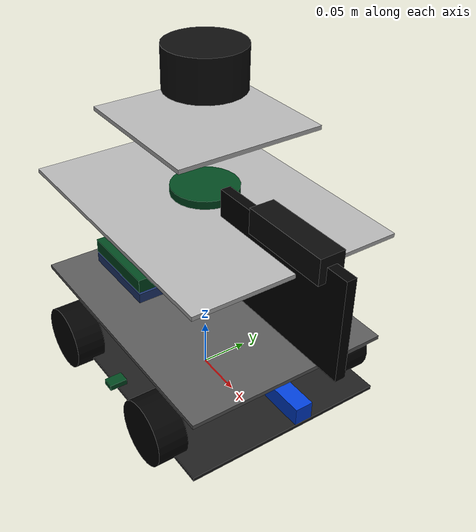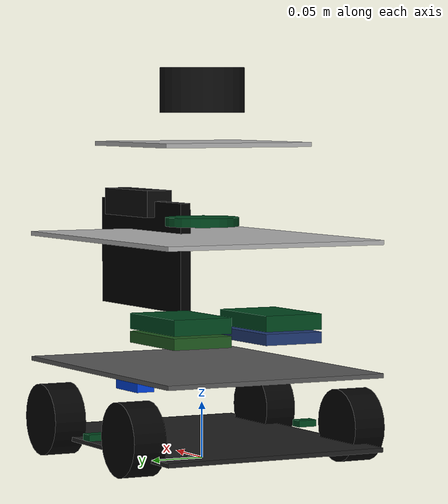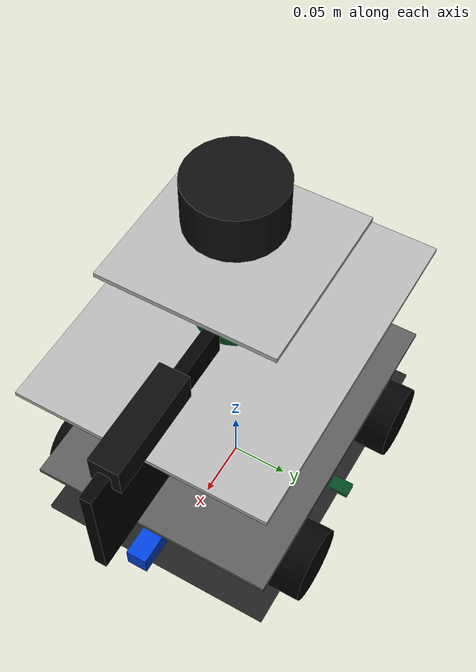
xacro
<?xml version="1.0"?>
<robot name="robot_savo" xmlns:xacro="http://www.ros.org/wiki/xacro">

  <xacro:arg name="use_transmissions" default="false"/>
  <xacro:arg name="use_gazebo" default="false"/>
  <xacro:arg name="base_length" default="0.2796"/>
  <xacro:arg name="base_width" default="0.2100"/>
  <xacro:arg name="base_height" default="0.0040"/>
  <xacro:arg name="third_plate_length" default="0.1420"/>
  <xacro:arg name="third_plate_width" default="0.1440"/>
  <xacro:arg name="third_plate_height" default="0.0040"/>
  <xacro:arg name="base_link_z" default="0.0325"/>
  <xacro:arg name="deck_thickness" default="0.004"/>
  <xacro:arg name="base_plate_z" default="-0.0155"/>
  <xacro:arg name="first_plate_z" default="0.0495"/>
  <xacro:arg name="second_plate_z" default="0.1655"/>
  <xacro:arg name="third_plate_z" default="0.2495"/>
  <xacro:arg name="base_mass" default="1.20"/>
  <xacro:arg name="deck_mass" default="0.20"/>
  <xacro:arg name="wheel_radius" default="0.0325"/>
  <xacro:arg name="wheel_width" default="0.030"/>
  <xacro:arg name="wheel_front_x" default="0.080"/>
  <xacro:arg name="wheel_rear_x" default="-0.080"/>
  <xacro:arg name="wheel_left_y" default="0.108"/>
  <xacro:arg name="wheel_right_y" default="-0.108"/>
  <xacro:arg name="wheel_z" default="0.0"/>
  <xacro:arg name="wheel_mass" default="0.12"/>
  <xacro:arg name="lidar_xyz" default="0 0 0.2975"/>
  <xacro:arg name="lidar_rpy" default="0 0 -3.089891"/>
  <xacro:arg name="imu_xyz" default="0 -0.0465 -0.0175"/>
  <xacro:arg name="imu_rpy" default="0 0 0"/>
  <xacro:arg name="camera_xyz" default="0.130 0 0.1925"/>
  <xacro:arg name="camera_rpy" default="0 0 0"/>
  <xacro:arg name="camera_color_xyz" default="-0.000287127564661 0.014867129735649 0.000134048212203"/>
  <xacro:arg name="camera_color_rpy" default="-0.007168423593435 0.000448528015039 0.010917321307075"/>
  <xacro:arg name="tof_left_xyz" default="0 0.106 -0.0075"/>
  <xacro:arg name="tof_left_rpy" default="0 0 1.57079632679"/>
  <xacro:arg name="tof_right_xyz" default="0 -0.106 -0.0075"/>
  <xacro:arg name="tof_right_rpy" default="0 0 -1.57079632679"/>
  <xacro:arg name="ultrasonic_xyz" default="0.137 0 0.0235"/>
  <xacro:arg name="ultrasonic_rpy" default="0 0 0"/>
  <xacro:arg name="display_xyz" default="0.115 0 0.145"/>
  <xacro:arg name="display_rpy" default="0 0 0"/>
  <xacro:arg name="respeaker_xyz" default="0 0 0.180"/>
  <xacro:arg name="respeaker_rpy" default="0 0 0"/>
  <xacro:arg name="pantilt_mount_xyz" default="0.115 0 0.2115"/>
  <xacro:arg name="pantilt_mount_rpy" default="0 0 0"/>
  <xacro:arg name="depth_obstacle_xyz" default="0.130 0 0.1925"/>

  <xacro:include filename="$(find savo_description)/urdf/materials.xacro"/>

  <xacro:include filename="$(find savo_description)/urdf/macros/inertial_macro.xacro"/>
  <xacro:include filename="$(find savo_description)/urdf/macros/box_macro.xacro"/>
  <xacro:include filename="$(find savo_description)/urdf/macros/cylinder_macro.xacro"/>
  <xacro:include filename="$(find savo_description)/urdf/macros/wheel_macro.xacro"/>
  <xacro:include filename="$(find savo_description)/urdf/macros/sensor_macro.xacro"/>
  <xacro:include filename="$(find savo_description)/urdf/macros/camera_macro.xacro"/>
  <xacro:include filename="$(find savo_description)/urdf/macros/pi_mount_macro.xacro"/>

  <xacro:include filename="$(find savo_description)/urdf/robot_savo_core.xacro"/>
  <xacro:include filename="$(find savo_description)/urdf/robot_savo_wheels.xacro"/>
  <xacro:include filename="$(find savo_description)/urdf/robot_savo_sensors.xacro"/>
  <xacro:include filename="$(find savo_description)/urdf/robot_savo_two_pi.xacro"/>
  <xacro:include filename="$(find savo_description)/urdf/robot_savo_costmap_frames.xacro"/>
  <xacro:include filename="$(find savo_description)/urdf/robot_savo_transmissions.xacro"/>
  <xacro:include filename="$(find savo_description)/urdf/robot_savo_gazebo.xacro"/>

  <xacro:robot_savo_core
    base_length="$(arg base_length)" base_width="$(arg base_width)"
    base_height="$(arg base_height)" base_link_z="$(arg base_link_z)"
    third_plate_length="$(arg third_plate_length)"
    third_plate_width="$(arg third_plate_width)"
    third_plate_height="$(arg third_plate_height)"
    deck_thickness="$(arg deck_thickness)"
    base_plate_z="$(arg base_plate_z)"
    first_plate_z="$(arg first_plate_z)"
    second_plate_z="$(arg second_plate_z)"
    third_plate_z="$(arg third_plate_z)"
    base_mass="$(arg base_mass)" deck_mass="$(arg deck_mass)"/>

  <xacro:robot_savo_wheels
    wheel_radius="$(arg wheel_radius)" wheel_width="$(arg wheel_width)"
    wheel_front_x="$(arg wheel_front_x)" wheel_rear_x="$(arg wheel_rear_x)"
    wheel_left_y="$(arg wheel_left_y)" wheel_right_y="$(arg wheel_right_y)"
    wheel_z="$(arg wheel_z)" wheel_mass="$(arg wheel_mass)"/>

  <xacro:robot_savo_sensors
    lidar_xyz="$(arg lidar_xyz)" lidar_rpy="$(arg lidar_rpy)"
    imu_xyz="$(arg imu_xyz)" imu_rpy="$(arg imu_rpy)"
    camera_xyz="$(arg camera_xyz)" camera_rpy="$(arg camera_rpy)"
    camera_color_xyz="$(arg camera_color_xyz)"
    camera_color_rpy="$(arg camera_color_rpy)"
    tof_left_xyz="$(arg tof_left_xyz)" tof_left_rpy="$(arg tof_left_rpy)"
    tof_right_xyz="$(arg tof_right_xyz)" tof_right_rpy="$(arg tof_right_rpy)"
    ultrasonic_xyz="$(arg ultrasonic_xyz)" ultrasonic_rpy="$(arg ultrasonic_rpy)"
    display_xyz="$(arg display_xyz)" display_rpy="$(arg display_rpy)"
    respeaker_xyz="$(arg respeaker_xyz)" respeaker_rpy="$(arg respeaker_rpy)"
    pantilt_mount_xyz="$(arg pantilt_mount_xyz)"
    pantilt_mount_rpy="$(arg pantilt_mount_rpy)"/>

  <xacro:robot_savo_two_pi/>

  <xacro:robot_savo_costmap_frames depth_obstacle_xyz="$(arg depth_obstacle_xyz)"/>

  <xacro:if value="$(arg use_transmissions)">
    <xacro:robot_savo_transmissions/>
  </xacro:if>

  <xacro:if value="$(arg use_gazebo)">
    <xacro:robot_savo_gazebo/>
  </xacro:if>

</robot>

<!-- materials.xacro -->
<robot xmlns:xacro="http://www.ros.org/wiki/xacro">

  <material name="savo_black">
    <color rgba="0.02 0.02 0.02 1.0"/>
  </material>

  <material name="savo_dark_gray">
    <color rgba="0.12 0.12 0.12 1.0"/>
  </material>

  <material name="savo_gray">
    <color rgba="0.35 0.35 0.35 1.0"/>
  </material>

  <material name="savo_light_gray">
    <color rgba="0.70 0.70 0.70 1.0"/>
  </material>

  <material name="savo_white">
    <color rgba="0.92 0.92 0.90 1.0"/>
  </material>

  <material name="savo_blue">
    <color rgba="0.00 0.25 0.85 1.0"/>
  </material>

  <material name="savo_cyan">
    <color rgba="0.00 0.75 0.95 1.0"/>
  </material>

  <material name="savo_green">
    <color rgba="0.00 0.65 0.25 1.0"/>
  </material>

  <material name="savo_red">
    <color rgba="0.85 0.05 0.05 1.0"/>
  </material>

  <material name="savo_orange">
    <color rgba="1.00 0.45 0.05 1.0"/>
  </material>

  <material name="savo_yellow">
    <color rgba="1.00 0.85 0.05 1.0"/>
  </material>

  <material name="savo_rubber">
    <color rgba="0.01 0.01 0.01 1.0"/>
  </material>

  <material name="savo_lidar">
    <color rgba="0.05 0.05 0.05 1.0"/>
  </material>

  <material name="savo_camera">
    <color rgba="0.04 0.04 0.04 1.0"/>
  </material>

  <material name="savo_display">
    <color rgba="0.00 0.00 0.00 1.0"/>
  </material>

  <material name="savo_pcb">
    <color rgba="0.00 0.28 0.12 1.0"/>
  </material>

  <material name="savo_core_pi">
    <color rgba="0.12 0.35 0.12 1.0"/>
  </material>

  <material name="savo_edge_pi">
    <color rgba="0.12 0.22 0.45 1.0"/>
  </material>

  <material name="savo_transparent">
    <color rgba="0.70 0.85 1.00 0.35"/>
  </material>

</robot>

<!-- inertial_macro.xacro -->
<robot xmlns:xacro="http://www.ros.org/wiki/xacro">

  <xacro:macro name="box_inertial" params="mass x y z">
    <inertial>
      <mass value="${mass}"/>
      <inertia
        ixx="${(mass / 12.0) * (y * y + z * z)}"
        ixy="0.0"
        ixz="0.0"
        iyy="${(mass / 12.0) * (x * x + z * z)}"
        iyz="0.0"
        izz="${(mass / 12.0) * (x * x + y * y)}"/>
    </inertial>
  </xacro:macro>

  <xacro:macro name="cylinder_inertial" params="mass radius length axis">
    <inertial>
      <mass value="${mass}"/>
      <xacro:if value="${axis == 'x'}">
        <inertia
          ixx="${0.5 * mass * radius * radius}"
          ixy="0.0"
          ixz="0.0"
          iyy="${(mass / 12.0) * (3.0 * radius * radius + length * length)}"
          iyz="0.0"
          izz="${(mass / 12.0) * (3.0 * radius * radius + length * length)}"/>
      </xacro:if>
      <xacro:if value="${axis == 'y'}">
        <inertia
          ixx="${(mass / 12.0) * (3.0 * radius * radius + length * length)}"
          ixy="0.0"
          ixz="0.0"
          iyy="${0.5 * mass * radius * radius}"
          iyz="0.0"
          izz="${(mass / 12.0) * (3.0 * radius * radius + length * length)}"/>
      </xacro:if>
      <xacro:if value="${axis == 'z'}">
        <inertia
          ixx="${(mass / 12.0) * (3.0 * radius * radius + length * length)}"
          ixy="0.0"
          ixz="0.0"
          iyy="${(mass / 12.0) * (3.0 * radius * radius + length * length)}"
          iyz="0.0"
          izz="${0.5 * mass * radius * radius}"/>
      </xacro:if>
    </inertial>
  </xacro:macro>

</robot>

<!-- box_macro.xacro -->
<robot xmlns:xacro="http://www.ros.org/wiki/xacro">

  <xacro:macro name="box_link" params="name size_xyz mass material">
    <link name="${name}">
      <visual>
        <origin xyz="0 0 0" rpy="0 0 0"/>
        <geometry>
          <box size="${size_xyz}"/>
        </geometry>
        <material name="${material}"/>
      </visual>

      <collision>
        <origin xyz="0 0 0" rpy="0 0 0"/>
        <geometry>
          <box size="${size_xyz}"/>
        </geometry>
      </collision>

      <xacro:property name="box_x" value="${float(size_xyz.split()[0])}"/>
      <xacro:property name="box_y" value="${float(size_xyz.split()[1])}"/>
      <xacro:property name="box_z" value="${float(size_xyz.split()[2])}"/>

      <xacro:box_inertial mass="${mass}" x="${box_x}" y="${box_y}" z="${box_z}"/>
    </link>
  </xacro:macro>

  <xacro:macro name="fixed_box" params="name parent xyz rpy size_xyz mass material">
    <xacro:box_link
      name="${name}"
      size_xyz="${size_xyz}"
      mass="${mass}"
      material="${material}"
    />

    <joint name="${name}_joint" type="fixed">
      <parent link="${parent}"/>
      <child link="${name}"/>
      <origin xyz="${xyz}" rpy="${rpy}"/>
    </joint>
  </xacro:macro>

</robot>

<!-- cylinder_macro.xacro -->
<robot xmlns:xacro="http://www.ros.org/wiki/xacro">

  <xacro:macro name="cylinder_link" params="name radius length mass material axis:=z">
    <link name="${name}">
      <visual>
        <origin xyz="0 0 0" rpy="${'0 1.57079632679 0' if axis == 'x' else '1.57079632679 0 0' if axis == 'y' else '0 0 0'}"/>
        <geometry>
          <cylinder radius="${radius}" length="${length}"/>
        </geometry>
        <material name="${material}"/>
      </visual>

      <collision>
        <origin xyz="0 0 0" rpy="${'0 1.57079632679 0' if axis == 'x' else '1.57079632679 0 0' if axis == 'y' else '0 0 0'}"/>
        <geometry>
          <cylinder radius="${radius}" length="${length}"/>
        </geometry>
      </collision>

      <xacro:cylinder_inertial
        mass="${mass}"
        radius="${radius}"
        length="${length}"
        axis="${axis}"
      />
    </link>
  </xacro:macro>

  <xacro:macro name="fixed_cylinder" params="name parent xyz rpy radius length mass material axis:=z">
    <xacro:cylinder_link
      name="${name}"
      radius="${radius}"
      length="${length}"
      mass="${mass}"
      material="${material}"
      axis="${axis}"
    />

    <joint name="${name}_joint" type="fixed">
      <parent link="${parent}"/>
      <child link="${name}"/>
      <origin xyz="${xyz}" rpy="${rpy}"/>
    </joint>
  </xacro:macro>

</robot>

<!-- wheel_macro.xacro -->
<robot xmlns:xacro="http://www.ros.org/wiki/xacro">

  <xacro:macro name="mecanum_wheel" params="name parent xyz rpy radius width mass material">
    <link name="${name}">
      <visual>
        <origin xyz="0 0 0" rpy="1.57079632679 0 0"/>
        <geometry>
          <cylinder radius="${radius}" length="${width}"/>
        </geometry>
        <material name="${material}"/>
      </visual>

      <collision>
        <origin xyz="0 0 0" rpy="1.57079632679 0 0"/>
        <geometry>
          <cylinder radius="${radius}" length="${width}"/>
        </geometry>
      </collision>

      <xacro:cylinder_inertial
        mass="${mass}"
        radius="${radius}"
        length="${width}"
        axis="y"
      />
    </link>

    <joint name="${name}_joint" type="continuous">
      <parent link="${parent}"/>
      <child link="${name}"/>
      <origin xyz="${xyz}" rpy="${rpy}"/>
      <axis xyz="0 1 0"/>
    </joint>
  </xacro:macro>

</robot>

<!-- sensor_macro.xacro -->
<robot xmlns:xacro="http://www.ros.org/wiki/xacro">

  <xacro:macro name="sensor_box" params="name parent xyz rpy size_xyz mass material">
    <xacro:fixed_box
      name="${name}"
      parent="${parent}"
      xyz="${xyz}"
      rpy="${rpy}"
      size_xyz="${size_xyz}"
      mass="${mass}"
      material="${material}"
    />
  </xacro:macro>

  <xacro:macro name="sensor_cylinder" params="name parent xyz rpy radius length mass material axis:=z">
    <xacro:fixed_cylinder
      name="${name}"
      parent="${parent}"
      xyz="${xyz}"
      rpy="${rpy}"
      radius="${radius}"
      length="${length}"
      mass="${mass}"
      material="${material}"
      axis="${axis}"
    />
  </xacro:macro>

  <xacro:macro name="sensor_frame" params="name parent xyz rpy">
    <link name="${name}"/>

    <joint name="${name}_joint" type="fixed">
      <parent link="${parent}"/>
      <child link="${name}"/>
      <origin xyz="${xyz}" rpy="${rpy}"/>
    </joint>
  </xacro:macro>

</robot>

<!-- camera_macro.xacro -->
<robot xmlns:xacro="http://www.ros.org/wiki/xacro">

  <xacro:macro name="camera_body" params="name parent xyz rpy size_xyz mass material">
    <xacro:fixed_box
      name="${name}"
      parent="${parent}"
      xyz="${xyz}"
      rpy="${rpy}"
      size_xyz="${size_xyz}"
      mass="${mass}"
      material="${material}"
    />
  </xacro:macro>

  <xacro:macro name="camera_frames" params="name parent xyz rpy color_xyz color_rpy">
    <link name="${name}_link"/>

    <joint name="${name}_joint" type="fixed">
      <parent link="${parent}"/>
      <child link="${name}_link"/>
      <origin xyz="${xyz}" rpy="${rpy}"/>
    </joint>

    <link name="${name}_color_frame"/>
    <joint name="${name}_color_joint" type="fixed">
      <parent link="${name}_link"/>
      <child link="${name}_color_frame"/>
      <origin xyz="${color_xyz}" rpy="${color_rpy}"/>
    </joint>

    <link name="${name}_color_optical_frame"/>
    <joint name="${name}_color_optical_joint" type="fixed">
      <parent link="${name}_color_frame"/>
      <child link="${name}_color_optical_frame"/>
      <origin xyz="0 0 0" rpy="-1.57079632679 0 -1.57079632679"/>
    </joint>

    <link name="${name}_depth_frame"/>
    <joint name="${name}_depth_joint" type="fixed">
      <parent link="${name}_link"/>
      <child link="${name}_depth_frame"/>
      <origin xyz="0 0 0" rpy="0 0 0"/>
    </joint>

    <link name="${name}_depth_optical_frame"/>
    <joint name="${name}_depth_optical_joint" type="fixed">
      <parent link="${name}_depth_frame"/>
      <child link="${name}_depth_optical_frame"/>
      <origin xyz="0 0 0" rpy="-1.57079632679 0 -1.57079632679"/>
    </joint>
  </xacro:macro>

  <xacro:macro name="depth_camera" params="name parent xyz rpy color_xyz color_rpy size_xyz mass material">
    <xacro:camera_body
      name="${name}_body"
      parent="${parent}"
      xyz="${xyz}"
      rpy="${rpy}"
      size_xyz="${size_xyz}"
      mass="${mass}"
      material="${material}"
    />

    <xacro:camera_frames
      name="${name}"
      parent="${name}_body"
      xyz="0 0 0"
      rpy="0 0 0"
      color_xyz="${color_xyz}"
      color_rpy="${color_rpy}"
    />
  </xacro:macro>

</robot>

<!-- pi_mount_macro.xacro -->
<robot xmlns:xacro="http://www.ros.org/wiki/xacro">

  <xacro:macro name="pi_mount" params="name parent xyz rpy size_xyz mass material">
    <xacro:fixed_box
      name="${name}"
      parent="${parent}"
      xyz="${xyz}"
      rpy="${rpy}"
      size_xyz="${size_xyz}"
      mass="${mass}"
      material="${material}"
    />
  </xacro:macro>

  <xacro:macro name="pi_mount_with_hat" params="name parent xyz rpy board_size_xyz hat_size_xyz board_mass hat_mass board_material hat_material">
    <xacro:fixed_box
      name="${name}_board_link"
      parent="${parent}"
      xyz="${xyz}"
      rpy="${rpy}"
      size_xyz="${board_size_xyz}"
      mass="${board_mass}"
      material="${board_material}"
    />

    <xacro:fixed_box
      name="${name}_hat_link"
      parent="${name}_board_link"
      xyz="0 0 0.014"
      rpy="0 0 0"
      size_xyz="${hat_size_xyz}"
      mass="${hat_mass}"
      material="${hat_material}"
    />

    <link name="${name}_frame"/>

    <joint name="${name}_frame_joint" type="fixed">
      <parent link="${name}_board_link"/>
      <child link="${name}_frame"/>
      <origin xyz="0 0 0" rpy="0 0 0"/>
    </joint>
  </xacro:macro>

</robot>

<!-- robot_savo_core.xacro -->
<robot xmlns:xacro="http://www.ros.org/wiki/xacro">

  <xacro:macro name="robot_savo_core"
    params="
      base_length:=0.2796
      base_width:=0.2100
      base_height:=0.0040
      third_plate_length:=0.1420
      third_plate_width:=0.1440
      third_plate_height:=0.0040
      base_link_z:=0.0325
      deck_thickness:=0.004
      base_plate_z:=-0.0155
      first_plate_z:=0.0495
      second_plate_z:=0.1655
      third_plate_z:=0.2495
      base_mass:=1.20
      deck_mass:=0.20
    ">

    <link name="base_footprint"/>

    <link name="base_link">
      <inertial>
        <mass value="0.001"/>
        <inertia
          ixx="0.000001"
          ixy="0.0"
          ixz="0.0"
          iyy="0.000001"
          iyz="0.0"
          izz="0.000001"/>
      </inertial>
    </link>

    <joint name="base_footprint_to_base_link" type="fixed">
      <parent link="base_footprint"/>
      <child link="base_link"/>
      <origin xyz="0 0 ${base_link_z}" rpy="0 0 0"/>
    </joint>

    <xacro:fixed_box
      name="chassis_link"
      parent="base_link"
      xyz="0 0 ${base_plate_z}"
      rpy="0 0 0"
      size_xyz="${base_length} ${base_width} ${base_height}"
      mass="${base_mass}"
      material="savo_dark_gray"
    />

    <xacro:fixed_box
      name="middle_deck_link"
      parent="base_link"
      xyz="0 0 ${first_plate_z}"
      rpy="0 0 0"
      size_xyz="${base_length} ${base_width} ${deck_thickness}"
      mass="${deck_mass}"
      material="savo_gray"
    />

    <xacro:fixed_box
      name="top_deck_link"
      parent="base_link"
      xyz="0 0 ${second_plate_z}"
      rpy="0 0 0"
      size_xyz="${base_length} ${base_width} ${deck_thickness}"
      mass="${deck_mass}"
      material="savo_light_gray"
    />

    <xacro:fixed_box
      name="lidar_deck_link"
      parent="base_link"
      xyz="0 0 ${third_plate_z}"
      rpy="0 0 0"
      size_xyz="${third_plate_length} ${third_plate_width} ${third_plate_height}"
      mass="${deck_mass}"
      material="savo_light_gray"
    />

  </xacro:macro>

</robot>

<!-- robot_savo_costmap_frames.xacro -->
<robot xmlns:xacro="http://www.ros.org/wiki/xacro">

  <xacro:macro name="robot_savo_costmap_frames"
    params="
      parent:=base_link
      depth_obstacle_xyz:='0.130 0 0.1925'
      local_costmap_z:=0.000
      footprint_z:=0.000
    ">

    <link name="depth_obstacle_frame"/>

    <joint name="depth_obstacle_frame_joint" type="fixed">
      <parent link="${parent}"/>
      <child link="depth_obstacle_frame"/>
      <origin xyz="${depth_obstacle_xyz}" rpy="0 0 0"/>
    </joint>

    <link name="local_costmap_frame"/>

    <joint name="local_costmap_frame_joint" type="fixed">
      <parent link="base_footprint"/>
      <child link="local_costmap_frame"/>
      <origin xyz="0 0 ${local_costmap_z}" rpy="0 0 0"/>
    </joint>

    <link name="footprint_debug_frame"/>

    <joint name="footprint_debug_frame_joint" type="fixed">
      <parent link="base_footprint"/>
      <child link="footprint_debug_frame"/>
      <origin xyz="0 0 ${footprint_z}" rpy="0 0 0"/>
    </joint>

  </xacro:macro>

</robot>
